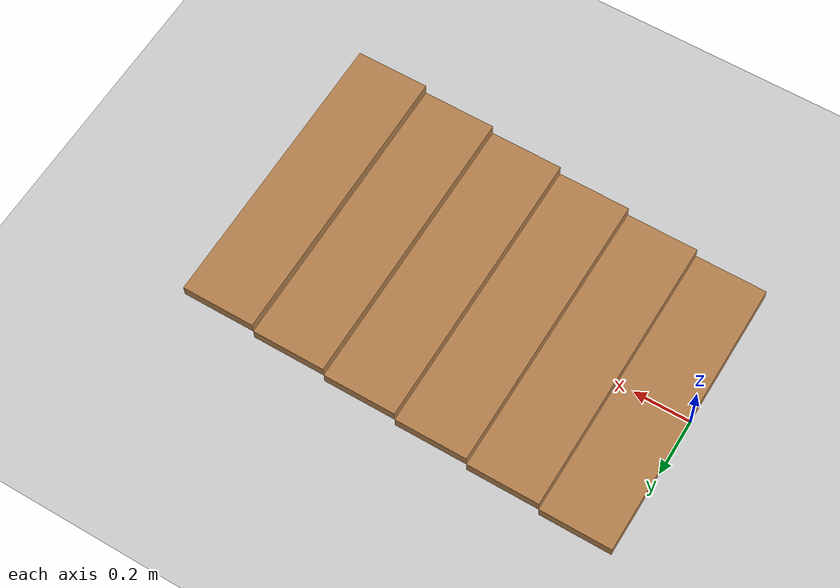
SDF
<?xml version="1.0"?>
<sdf version="1.6">
  <world name="stairs">

    <plugin
      filename="gz-sim-physics-system"
      name="gz::sim::systems::Physics">
    </plugin>
    <plugin
      filename="gz-sim-user-commands-system"
      name="gz::sim::systems::UserCommands">
    </plugin>
    <plugin
      filename="gz-sim-scene-broadcaster-system"
      name="gz::sim::systems::SceneBroadcaster">
    </plugin>
    <plugin
      filename="gz-sim-contact-system"
      name="gz::sim::systems::Contact">
    </plugin>
    <plugin
      filename="gz-sim-sensors-system"
      name="gz::sim::systems::Sensors">
      <render_engine>ogre2</render_engine>
    </plugin>
    <plugin
      filename="gz-sim-imu-system"
      name="gz::sim::systems::Imu">
    </plugin>

    <gui fullscreen="0">

      <!-- 3D scene -->
      <plugin filename="MinimalScene" name="3D View">
        <gz-gui>
          <title>3D View</title>
          <property type="bool" key="showTitleBar">false</property>
          <property type="string" key="state">docked</property>
        </gz-gui>

        <engine>ogre2</engine>
        <scene>scene</scene>
        <ambient_light>1.0 1.0 1.0</ambient_light>
        <background_color>0.8 0.8 0.8</background_color>
        <camera_pose>-6 0 6 0 0.5 0</camera_pose>
      </plugin>

      <!-- Plugins that add functionality to the scene -->
      <plugin filename="EntityContextMenuPlugin" name="Entity context menu">
        <gz-gui>
          <property key="state" type="string">floating</property>
          <property key="width" type="double">5</property>
          <property key="height" type="double">5</property>
          <property key="showTitleBar" type="bool">false</property>
        </gz-gui>
      </plugin>
      <plugin filename="GzSceneManager" name="Scene Manager">
        <gz-gui>
          <property key="resizable" type="bool">false</property>
          <property key="width" type="double">5</property>
          <property key="height" type="double">5</property>
          <property key="state" type="string">floating</property>
          <property key="showTitleBar" type="bool">false</property>
        </gz-gui>
      </plugin>
      <plugin filename="InteractiveViewControl" name="Interactive view control">
        <gz-gui>
          <property key="resizable" type="bool">false</property>
          <property key="width" type="double">5</property>
          <property key="height" type="double">5</property>
          <property key="state" type="string">floating</property>
          <property key="showTitleBar" type="bool">false</property>
        </gz-gui>
      </plugin>
      <plugin filename="CameraTracking" name="Camera Tracking">
        <gz-gui>
          <property key="resizable" type="bool">false</property>
          <property key="width" type="double">5</property>
          <property key="height" type="double">5</property>
          <property key="state" type="string">floating</property>
          <property key="showTitleBar" type="bool">false</property>
        </gz-gui>
      </plugin>

      <!-- World control -->
      <plugin filename="WorldControl" name="World control">
        <gz-gui>
          <title>World control</title>
          <property type="bool" key="showTitleBar">false</property>
          <property type="bool" key="resizable">false</property>
          <property type="double" key="height">72</property>
          <property type="double" key="z">1</property>

          <property type="string" key="state">floating</property>
          <anchors target="3D View">
            <line own="left" target="left"/>
            <line own="bottom" target="bottom"/>
          </anchors>
        </gz-gui>

        <play_pause>true</play_pause>
        <step>true</step>
        <start_paused>true</start_paused>
        <use_event>true</use_event>

      </plugin>

      <!-- World statistics -->
      <plugin filename="WorldStats" name="World stats">
        <gz-gui>
          <title>World stats</title>
          <property type="bool" key="showTitleBar">false</property>
          <property type="bool" key="resizable">false</property>
          <property type="double" key="height">110</property>
          <property type="double" key="width">290</property>
          <property type="double" key="z">1</property>

          <property type="string" key="state">floating</property>
          <anchors target="3D View">
            <line own="right" target="right"/>
            <line own="bottom" target="bottom"/>
          </anchors>
        </gz-gui>

        <sim_time>true</sim_time>
        <real_time>true</real_time>
        <real_time_factor>true</real_time_factor>
        <iterations>true</iterations>
      </plugin>

    </gui>

    <physics name="1ms" type="ignored">
      <max_step_size>0.001</max_step_size>
      <real_time_factor>1.0</real_time_factor>
    </physics>

    <scene>
      <ambient>0.4 0.4 0.4 1.0</ambient>
      <background>0.7 0.7 0.7 1.0</background>
      <shadows>true</shadows>
    </scene>

    <physics name="physics" type="ode">
      <max_step_size>0.001</max_step_size>
      <real_time_factor>1.0</real_time_factor>
      <real_time_update_rate>1000</real_time_update_rate>
    </physics>

    <gravity>0 0 -9.8</gravity>

    <wind/>

    <!-- Ground plane -->
    <model name="ground_plane">
      <static>true</static>
      <link name="link">
        <collision name="collision">
          <geometry>
            <plane>
              <normal>0 0 1</normal>
              <size>100 100</size>
            </plane>
          </geometry>
        </collision>
        <visual name="visual">
          <geometry>
            <plane>
              <normal>0 0 1</normal>
              <size>100 100</size>
            </plane>
          </geometry>
          <material>
            <ambient>0.8 0.8 0.8 1</ambient>
            <diffuse>0.8 0.8 0.8 1</diffuse>
            <specular>0.8 0.8 0.8 1</specular>
          </material>
        </visual>
      </link>
    </model>

    <!-- 6 cm riser stairs -->
    <include>
      <name>real_stairs</name>
      <uri>model://real_stairs</uri>
      <pose>0 0 0 0 0 0</pose>
    </include>

    <!-- GUI -->
    <gui fullscreen="0">
      <camera name="default">
        <pose>3 3 2 0 -0.4 2.2</pose>
      </camera>
    </gui>

  </world>
</sdf>

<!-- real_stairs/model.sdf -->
<sdf version="1.6">
  <model name="real_stairs">
    <static>true</static>
    <link name="stairs_link">
      <!-- 6 steps, riser height 0.04 m, tread depth 0.25 m, width 1.0 m -->
      <!-- Each collision/visual is a box; positions are relative to the link frame at the base. -->
      <!-- step_0 -->
      <collision name="step_0_collision">
        <pose>0.125 0 0.02 0 0 0</pose>
        <geometry>
          <box>
            <size>0.25 1.0 0.04</size>
          </box>
        </geometry>
      </collision>
      <visual name="step_0_visual">
        <pose>0.125 0 0.02 0 0 0</pose>
        <geometry>
          <box>
            <size>0.25 1.0 0.04</size>
          </box>
        </geometry>
        <material>
          <script>
            <uri>file://media/materials/scripts/gazebo.material</uri>
            <name>Gazebo/Wood</name>
          </script>
          <ambient>0.8 0.8 0.8 1</ambient>
          <diffuse>0.9 0.9 0.9 1</diffuse>
        </material>
      </visual>

      <!-- step_1 -->
      <collision name="step_1_collision">
        <pose>0.375 0 0.06 0 0 0</pose>
        <geometry>
          <box>
            <size>0.25 1.0 0.04</size>
          </box>
        </geometry>
      </collision>
      <visual name="step_1_visual">
        <pose>0.375 0 0.06 0 0 0</pose>
        <geometry>
          <box>
            <size>0.25 1.0 0.04</size>
          </box>
        </geometry>
        <material>
          <script>
            <uri>file://media/materials/scripts/gazebo.material</uri>
            <name>Gazebo/Wood</name>
          </script>
          <ambient>0.8 0.8 0.8 1</ambient>
          <diffuse>0.9 0.9 0.9 1</diffuse>
        </material>
      </visual>

      <!-- step_2 -->
      <collision name="step_2_collision">
        <pose>0.625 0 0.10 0 0 0</pose>
        <geometry>
          <box>
            <size>0.25 1.0 0.04</size>
          </box>
        </geometry>
      </collision>
      <visual name="step_2_visual">
        <pose>0.625 0 0.10 0 0 0</pose>
        <geometry>
          <box>
            <size>0.25 1.0 0.04</size>
          </box>
        </geometry>
        <material>
          <script>
            <uri>file://media/materials/scripts/gazebo.material</uri>
            <name>Gazebo/Wood</name>
          </script>
          <ambient>0.8 0.8 0.8 1</ambient>
          <diffuse>0.9 0.9 0.9 1</diffuse>
        </material>
      </visual>

      <!-- step_3 -->
      <collision name="step_3_collision">
        <pose>0.875 0 0.14 0 0 0</pose>
        <geometry>
          <box>
            <size>0.25 1.0 0.04</size>
          </box>
        </geometry>
      </collision>
      <visual name="step_3_visual">
        <pose>0.875 0 0.14 0 0 0</pose>
        <geometry>
          <box>
            <size>0.25 1.0 0.04</size>
          </box>
        </geometry>
        <material>
          <script>
            <uri>file://media/materials/scripts/gazebo.material</uri>
            <name>Gazebo/Wood</name>
          </script>
          <ambient>0.8 0.8 0.8 1</ambient>
          <diffuse>0.9 0.9 0.9 1</diffuse>
        </material>
      </visual>

      <!-- step_4 -->
      <collision name="step_4_collision">
        <pose>1.125 0 0.18 0 0 0</pose>
        <geometry>
          <box>
            <size>0.25 1.0 0.04</size>
          </box>
        </geometry>
      </collision>
      <visual name="step_4_visual">
        <pose>1.125 0 0.18 0 0 0</pose>
        <geometry>
          <box>
            <size>0.25 1.0 0.04</size>
          </box>
        </geometry>
        <material>
          <script>
            <uri>file://media/materials/scripts/gazebo.material</uri>
            <name>Gazebo/Wood</name>
          </script>
          <ambient>0.8 0.8 0.8 1</ambient>
          <diffuse>0.9 0.9 0.9 1</diffuse>
        </material>
      </visual>

      <!-- step_5 -->
      <collision name="step_5_collision">
        <pose>1.375 0 0.22 0 0 0</pose>
        <geometry>
          <box>
            <size>0.25 1.0 0.04</size>
          </box>
        </geometry>
      </collision>
      <visual name="step_5_visual">
        <pose>1.375 0 0.22 0 0 0</pose>
        <geometry>
          <box>
            <size>0.25 1.0 0.04</size>
          </box>
        </geometry>
        <material>
          <script>
            <uri>file://media/materials/scripts/gazebo.material</uri>
            <name>Gazebo/Wood</name>
          </script>
          <ambient>0.8 0.8 0.8 1</ambient>
          <diffuse>0.9 0.9 0.9 1</diffuse>
        </material>
      </visual>

    </link>
  </model>
</sdf>
